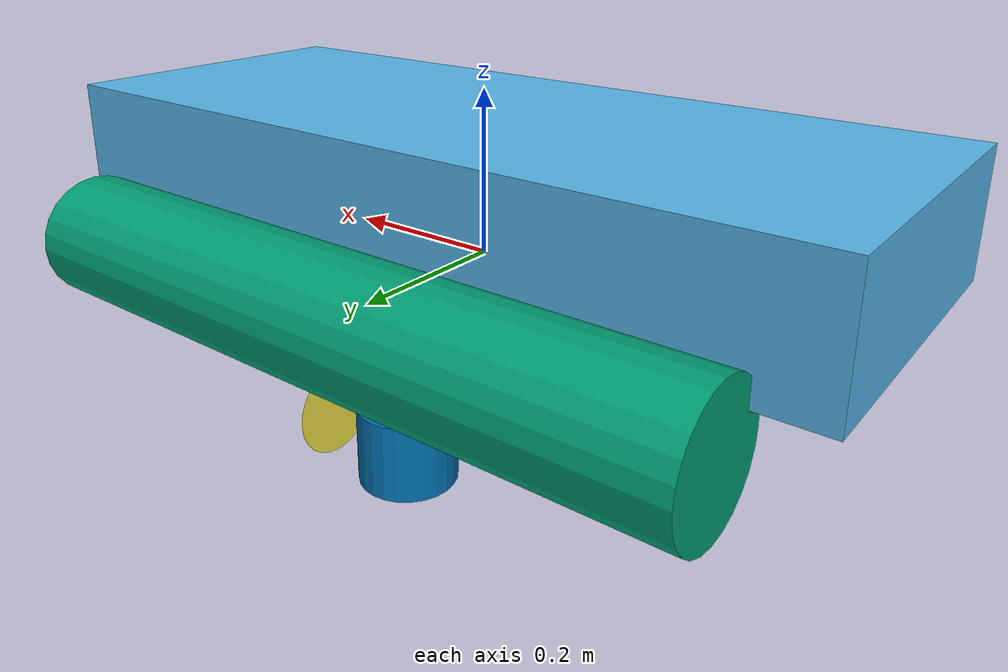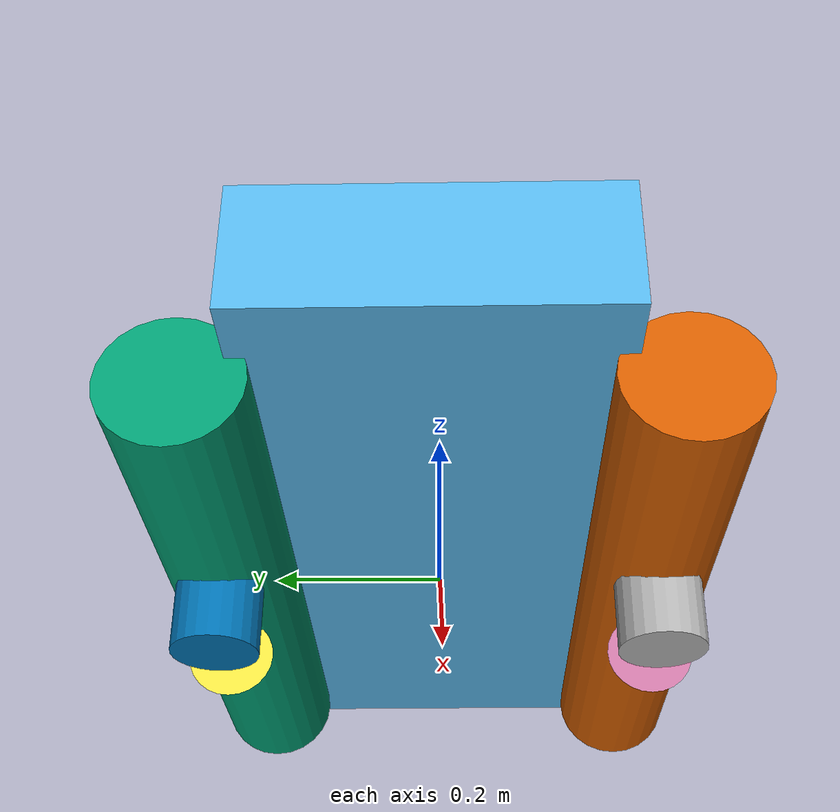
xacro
<?xml version="1.0"?>
<robot name="nukhada" xmlns:xacro="http://www.ros.org/wiki/xacro" >
  <xacro:arg name="debug" default="0"/>
  <xacro:arg name="namespace" default="nukhada"/>
  <!-- Include the ROV macro file -->
  <xacro:include filename="$(find nukhada_description)/urdf/scaled-real/base.xacro"/>

  <!-- Create the nukhada -->
  <xacro:nukhada_base namespace="$(arg namespace)"></xacro:nukhada_base>

</robot>

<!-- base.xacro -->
<robot xmlns:xacro="http://www.ros.org/wiki/xacro">
  <!-- Loading some constants -->
  <xacro:include filename="$(find uuv_descriptions)/urdf/common.urdf.xacro"/>
  <!-- Loading vehicle's specific macros -->
  <xacro:include filename="$(find nukhada_description)/urdf/scaled-real/snippets.xacro"/>

  <xacro:include filename="$(find nukhada_description)/urdf/scaled-real/hull.xacro" />

  <!-- Properties -->
  <xacro:property name="length" value="1" />
  <xacro:property name="width" value="0.55" />

  <xacro:property name="hull_length" value="1" />
  <xacro:property name="hull_width" value="0.15" />
  <xacro:property name="hull_height" value="0.15" />

  <xacro:property name="width_between_hulls" value="0.25" />

  <xacro:property name="pod_altitude" value="0.1" />
  <xacro:property name="pod_length" value="0.1" />
  <xacro:property name="pod_radius" value="0.05" />

  <xacro:property name="propeller_length" value="0.08" />
  <xacro:property name="propeller_radius" value="0.05" />

  <xacro:property name="thruster_ids" value="${dict([('port',0), ('starboard',1)])}"/>

  <!-- Vehicle macro -->
  <xacro:macro name="nukhada_base" params="namespace">

    <!-- Rigid body description of the base link -->
    <link name="${namespace}/base_link"></link>

    <link name="chassis">
      <xacro:inertia_cuboid m="5" l="1" w="${width_between_hulls}" h="0.15" />

      <visual>
        <origin xyz="0 0 0.1" rpy="0 0 0" />
        <geometry>
          <box size="1 ${width_between_hulls+hull_width} 0.15" />
        </geometry>
      </visual>
      <collision>
        <origin xyz="0 0 0.1" rpy="0 0 0" />
        <geometry>
          <box size="1 ${width_between_hulls+hull_width} 0.15" />
        </geometry>
      </collision>
    </link>

    <joint name="base_link_to_chassis" type="fixed">
      <parent link="${namespace}/base_link" />
      <child link="chassis" />
    </joint>

    <xacro:hull robot_namespace="${namespace}" parent_link="chassis" prefix="port" reflect="1" thruster_id="0"/>
    <xacro:hull robot_namespace="${namespace}" parent_link="chassis" prefix="starboard" reflect="-1" thruster_id="1"/>
  </xacro:macro>
</robot>

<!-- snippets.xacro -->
<robot xmlns:xacro="http://www.ros.org/wiki/xacro">

  <!-- MACRO FOR THRUSTER UNITS  -->

  <!-- Provide the propeller mesh in a separate file with the rotation axis
  over propeller's frame X-axis in DAE (Collada) or STL format.
  -->
  <xacro:property name="prop_mesh_file" value="file://$(find nukhada_description)/meshes/propeller.dae"/>

  <!--
    Thruster macro with integration of joint and link. The thrusters should
    be initialized in the actuators.xacro file.
  -->
  <xacro:macro name="thruster_macro" params="robot_namespace thruster_id parent_link *origin">

    <!--
    Dummy link as place holder for the thruster frame,
    since thrusters can often be inside the collision geometry
    of the vehicle and may cause internal collisions if set otherwise
    -->
    <link name="${robot_namespace}/thruster_${thruster_id}">

      <visual>
        <geometry>
          <mesh filename="${prop_mesh_file}" scale="0.001 0.001 0.001" />
        </geometry>
      </visual>

      <inertial>
        <mass value="0.001" />
        <origin xyz="0 0 0" rpy="0 0 0"/>
        <inertia ixx="0.000000017" ixy="0.0" ixz="0.0"
               iyy="0.000000017" iyz="0.0"
               izz="0.000000017" />
      </inertial>
    </link>

    <!-- Joint between thruster link and vehicle base link -->
    <joint name="${robot_namespace}/thruster_${thruster_id}_joint" type="continuous">
      <xacro:insert_block name="origin" />
      <axis xyz="1 0 0" />
      <parent link="${parent_link}" />
      <child link="${robot_namespace}/thruster_${thruster_id}" />
    </joint>
  </xacro:macro>

  <xacro:macro name="inertia_cylinder" params="m r l">
        <inertial>
            <mass value="${m}" />
            <inertia ixx="${1/12*m*(3*r*r*r+l*l)}" ixy="0.0" ixz="0.0"
                iyy="${1/12*m*(3*r*r*r+l*l)}" iyz="0.0"
                izz="${1/2*m*r*r}" />
        </inertial>
    </xacro:macro>

    <xacro:macro name="inertia_cuboid" params="m l w h">
        <inertial>
            <mass value="${m}" />
            <inertia ixx="${1/12*m*(w*w+h*h)}" ixy="0.0" ixz="0.0"
                iyy="${1/12*m*(l*l+h*h)}" iyz="0.0"
                izz="${1/12*m*(l*l+w*w)}" />
        </inertial>
    </xacro:macro>

</robot>

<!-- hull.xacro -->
<robot xmlns:xacro="http://www.ros.org/wiki/xacro">

    <xacro:include filename="$(find nukhada_description)/urdf/scaled-real/pod.xacro" />

    <xacro:macro name="hull" params="robot_namespace parent_link prefix reflect thruster_id">

        <link name="hull_${prefix}">

            <visual>
                <origin xyz="0 0 0" rpy="0 ${pi/2} 0"/>
                <geometry>
                    <cylinder length="${hull_length-hull_height}" radius="${hull_height/2}"/>
                </geometry>
            </visual>

            <!-- WARNING(Jeremy): these collisions mess with the buoyancy plugin -->

            <collision>
                <origin xyz="0 0 0" rpy="0 ${pi/2} 0"/>
                <geometry>
                    <cylinder length="${hull_length-hull_height}" radius="${hull_height/2}"/>
                </geometry>
            </collision>

            <xacro:inertia_cylinder m="2" r="${hull_height/2}" l="${hull_length}" />

        </link>

        <joint name="${parent_link}_to_${prefix}_hull" type="fixed">
            <parent link="${parent_link}" />
            <child link="hull_${prefix}" />

            <origin xyz="0 ${reflect*width_between_hulls} 0" />
        </joint>

        <xacro:pod
            robot_namespace="${robot_namespace}"
            parent_link="hull_${prefix}"
            prefix="${prefix}"
            thruster_id="${thruster_id}" />

    </xacro:macro>

</robot>

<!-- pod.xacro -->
<robot xmlns:xacro="http://ros.org/wiki/xacro">

    <xacro:include filename="$(find nukhada_description)/urdf/scaled-real/propeller.xacro" />

    <xacro:macro name="pod" params="robot_namespace parent_link prefix thruster_id">

        <link name="pod_${prefix}">

            <visual>
                <geometry>
                    <cylinder length="${pod_length-pod_radius*2}" radius="${pod_radius}" />
                </geometry>
                <origin xyz="0 0 0" rpy="0 ${pi/2} 0"/>
            </visual>

            <collision>
                <geometry>
                    <cylinder length="${pod_length-pod_radius*2}" radius="${pod_radius}" />
                </geometry>
                <origin xyz="0 0 0" rpy="0 ${pi/2} 0" />
            </collision>

            <xacro:inertia_cylinder m="0.3" r="${pod_radius}" l="${pod_length}" />

        </link>

        <joint name="${parent_link}_to_pod" type="fixed">
            <parent link="${parent_link}" />
            <child link="pod_${prefix}" />

            <origin xyz="0 0 -${pod_altitude}" />
        </joint>

        <xacro:propeller parent_link="pod_${prefix}" prefix="${prefix}" id="${thruster_id}">
        </xacro:propeller>

    </xacro:macro>

</robot>

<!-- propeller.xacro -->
<robot xmlns:xacro="http://ros.org/wiki/xacro">

    <xacro:macro name="propeller" params="parent_link prefix id">

        <link name="${robot_namespace}/thruster_${thruster_id}">

            <visual>
                <geometry>
                    <cylinder length="${propeller_length}" radius="${propeller_radius}" />
                </geometry>
                <origin xyz="0 0 0" rpy="0 0 0"/>
            </visual>

            <collision>
                <origin xyz="0.034954872 0 0" rpy="0 ${pi/2} 0" />
                <geometry>
                    <cylinder length="${propeller_length}" radius="${propeller_radius}" />
                </geometry>
            </collision>

            <xacro:inertia_cylinder m="0.01" r="${propeller_radius}" l="${propeller_length}" />

        </link>

        <joint name="${robot_namespace}/thruster_${thruster_id}_joint" type="fixed">
            <parent link="${parent_link}" />
            <child link="${robot_namespace}/thruster_${thruster_id}" />

            <origin xyz="-0.1 0 0" />
            <axis xyz="1 0 0" />

            <limit effort="0" velocity="0" />
        </joint>

    </xacro:macro>

</robot>
